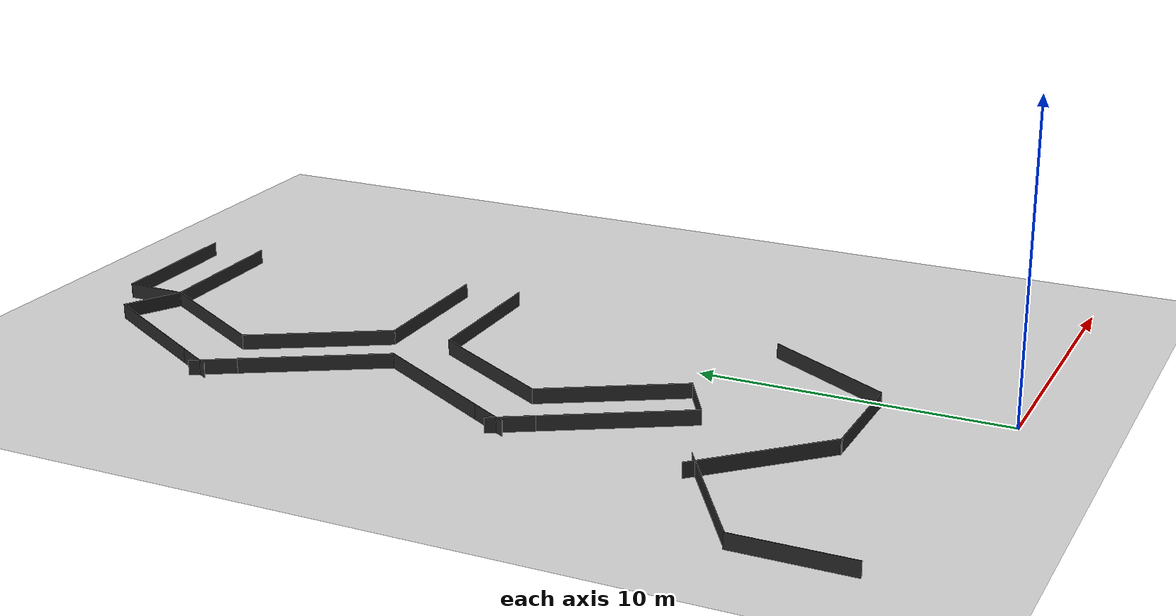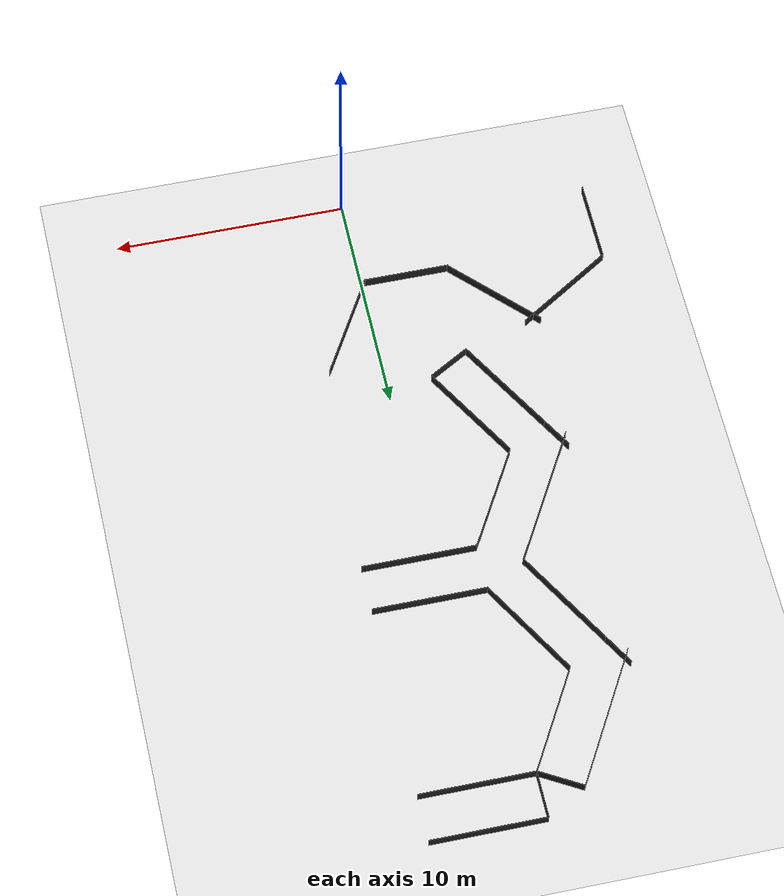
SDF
<sdf version="1.6">
 <world name="default">
  <model name="ground_plane">
   <static>1</static>
   <link name="link">
    <collision name="collision">
     <geometry><plane><normal>0 0 1</normal><size>100 100</size></plane></geometry>
     <surface><friction><ode><mu>100</mu><mu2>50</mu2></ode></friction></surface>
    </collision>
    <visual name="visual">
     <cast_shadows>0</cast_shadows>
     <geometry><plane><normal>0 0 1</normal><size>100 100</size></plane></geometry>
     <material>
      <script><uri>file://media/materials/scripts/gazebo.material</uri><name>Gazebo/White</name></script>
     </material>
    </visual>
   </link>
  </model>
  <model name="T_maze_0">
   <link name="link_clone_0_clone_clone">
    <inertial>
     <mass>1</mass>
     <inertia>
      <ixx>0.166667</ixx>
      <ixy>0</ixy>
      <ixz>0</ixz>
      <iyy>0.166667</iyy>
      <iyz>0</iyz>
      <izz>0.166667</izz>
     </inertia>
    </inertial>
    <pose>17.958 -12.4374 -0 5e-06 -0 -2.0944</pose>
    <visual name="visual">
     <geometry><box><size>0.015 4.8453 0.5</size></box></geometry>
     <material>
      <script><name>Gazebo/FlatBlack</name><uri>file://media/materials/scripts/gazebo.material</uri></script>
      <shader type="pixel"><normal_map>__default__</normal_map></shader>
      <ambient>0.1 0.1 0.1 1</ambient>
      <diffuse>0.1 0.1 0.1 1</diffuse>
      <specular>0.01 0.01 0.01 1</specular>
      <emissive>0 0 0 1</emissive>
     </material>
    </visual>
    <visual name="visual_2">
     <geometry><box><size>0.015 4.8453 0.5</size></box></geometry>
     <material>
      <script><name>Gazebo/FlatBlack</name><uri>file://media/materials/scripts/gazebo.material</uri></script>
      <shader type="pixel"><normal_map>__default__</normal_map></shader>
      <ambient>0.1 0.1 0.1 1</ambient>
      <diffuse>0.1 0.1 0.1 1</diffuse>
      <specular>0.01 0.01 0.01 1</specular>
      <emissive>0 0 0 1</emissive>
     </material>
     <pose>2 0 0 0 -0 0</pose>
    </visual>
    <collision name="collision_1">
     <pose>2 0 0 0 -0 0</pose>
     <geometry><box><size>0.015 4.8453 0.5</size></box></geometry>
     <surface>
      <friction>
       <ode><mu>1</mu><mu2>1</mu2><fdir1>0 0 0</fdir1><slip1>0</slip1><slip2>0</slip2></ode>
       <torsional>
        <coefficient>1</coefficient>
        <patch_radius>0</patch_radius>
        <surface_radius>0</surface_radius>
        <use_patch_radius>1</use_patch_radius>
        <ode><slip>0</slip></ode>
       </torsional>
      </friction>
      <bounce><restitution_coefficient>0</restitution_coefficient><threshold>1e+06</threshold></bounce>
      <contact>
       <collide_without_contact>0</collide_without_contact>
       <collide_without_contact_bitmask>1</collide_without_contact_bitmask>
       <collide_bitmask>1</collide_bitmask>
       <ode>
        <soft_cfm>0</soft_cfm>
        <soft_erp>0.2</soft_erp>
        <kp>1e+13</kp>
        <kd>1</kd>
        <max_vel>0.01</max_vel>
        <min_depth>0</min_depth>
       </ode>
       <bullet>
        <split_impulse>1</split_impulse>
        <split_impulse_penetration_threshold>-0.01</split_impulse_penetration_threshold>
        <soft_cfm>0</soft_cfm>
        <soft_erp>0.2</soft_erp>
        <kp>1e+13</kp>
        <kd>1</kd>
       </bullet>
      </contact>
     </surface>
    </collision>
    <collision name="collision">
     <geometry><box><size>0.015 4.8453 0.5</size></box></geometry>
     <surface>
      <friction>
       <ode><mu>1</mu><mu2>1</mu2><fdir1>0 0 0</fdir1><slip1>0</slip1><slip2>0</slip2></ode>
       <torsional>
        <coefficient>1</coefficient>
        <patch_radius>0</patch_radius>
        <surface_radius>0</surface_radius>
        <use_patch_radius>1</use_patch_radius>
        <ode><slip>0</slip></ode>
       </torsional>
      </friction>
      <bounce><restitution_coefficient>0</restitution_coefficient><threshold>1e+06</threshold></bounce>
      <contact>
       <collide_without_contact>0</collide_without_contact>
       <collide_without_contact_bitmask>1</collide_without_contact_bitmask>
       <collide_bitmask>1</collide_bitmask>
       <ode>
        <soft_cfm>0</soft_cfm>
        <soft_erp>0.2</soft_erp>
        <kp>1e+13</kp>
        <kd>1</kd>
        <max_vel>0.01</max_vel>
        <min_depth>0</min_depth>
       </ode>
       <bullet>
        <split_impulse>1</split_impulse>
        <split_impulse_penetration_threshold>-0.01</split_impulse_penetration_threshold>
        <soft_cfm>0</soft_cfm>
        <soft_erp>0.2</soft_erp>
        <kp>1e+13</kp>
        <kd>1</kd>
       </bullet>
      </contact>
     </surface>
    </collision>
   </link>
   <link name="link_clone_0_clone_clone_0">
    <inertial>
     <mass>1</mass>
     <inertia>
      <ixx>0.166667</ixx>
      <ixy>0</ixy>
      <ixz>0</ixz>
      <iyy>0.166667</iyy>
      <iyz>0</iyz>
      <izz>0.166667</izz>
     </inertia>
    </inertial>
    <pose>7.58617 -12.4482 -0 5e-06 -0 -2.0944</pose>
    <visual name="visual_2">
     <geometry><box><size>0.015 4.8453 0.5</size></box></geometry>
     <material>
      <script><name>Gazebo/FlatBlack</name><uri>file://media/materials/scripts/gazebo.material</uri></script>
      <shader type="pixel"><normal_map>__default__</normal_map></shader>
      <ambient>0.1 0.1 0.1 1</ambient>
      <diffuse>0.1 0.1 0.1 1</diffuse>
      <specular>0.01 0.01 0.01 1</specular>
      <emissive>0 0 0 1</emissive>
     </material>
     <pose>2 0 0 0 -0 0</pose>
    </visual>
    <visual name="visual">
     <geometry><box><size>0.015 4.8453 0.5</size></box></geometry>
     <material>
      <script><name>Gazebo/FlatBlack</name><uri>file://media/materials/scripts/gazebo.material</uri></script>
      <shader type="pixel"><normal_map>__default__</normal_map></shader>
      <ambient>0.1 0.1 0.1 1</ambient>
      <diffuse>0.1 0.1 0.1 1</diffuse>
      <specular>0.01 0.01 0.01 1</specular>
      <emissive>0 0 0 1</emissive>
     </material>
    </visual>
    <collision name="collision">
     <geometry><box><size>0.015 4.8453 0.5</size></box></geometry>
     <surface>
      <friction>
       <ode><mu>1</mu><mu2>1</mu2><fdir1>0 0 0</fdir1><slip1>0</slip1><slip2>0</slip2></ode>
       <torsional>
        <coefficient>1</coefficient>
        <patch_radius>0</patch_radius>
        <surface_radius>0</surface_radius>
        <use_patch_radius>1</use_patch_radius>
        <ode><slip>0</slip></ode>
       </torsional>
      </friction>
      <bounce><restitution_coefficient>0</restitution_coefficient><threshold>1e+06</threshold></bounce>
      <contact>
       <collide_without_contact>0</collide_without_contact>
       <collide_without_contact_bitmask>1</collide_without_contact_bitmask>
       <collide_bitmask>1</collide_bitmask>
       <ode>
        <soft_cfm>0</soft_cfm>
        <soft_erp>0.2</soft_erp>
        <kp>1e+13</kp>
        <kd>1</kd>
        <max_vel>0.01</max_vel>
        <min_depth>0</min_depth>
       </ode>
       <bullet>
        <split_impulse>1</split_impulse>
        <split_impulse_penetration_threshold>-0.01</split_impulse_penetration_threshold>
        <soft_cfm>0</soft_cfm>
        <soft_erp>0.2</soft_erp>
        <kp>1e+13</kp>
        <kd>1</kd>
       </bullet>
      </contact>
     </surface>
    </collision>
    <collision name="collision_1">
     <pose>2 0 0 0 -0 0</pose>
     <geometry><box><size>0.015 4.8453 0.5</size></box></geometry>
     <surface>
      <friction>
       <ode><mu>1</mu><mu2>1</mu2><fdir1>0 0 0</fdir1><slip1>0</slip1><slip2>0</slip2></ode>
       <torsional>
        <coefficient>1</coefficient>
        <patch_radius>0</patch_radius>
        <surface_radius>0</surface_radius>
        <use_patch_radius>1</use_patch_radius>
        <ode><slip>0</slip></ode>
       </torsional>
      </friction>
      <bounce><restitution_coefficient>0</restitution_coefficient><threshold>1e+06</threshold></bounce>
      <contact>
       <collide_without_contact>0</collide_without_contact>
       <collide_without_contact_bitmask>1</collide_without_contact_bitmask>
       <collide_bitmask>1</collide_bitmask>
       <ode>
        <soft_cfm>0</soft_cfm>
        <soft_erp>0.2</soft_erp>
        <kp>1e+13</kp>
        <kd>1</kd>
        <max_vel>0.01</max_vel>
        <min_depth>0</min_depth>
       </ode>
       <bullet>
        <split_impulse>1</split_impulse>
        <split_impulse_penetration_threshold>-0.01</split_impulse_penetration_threshold>
        <soft_cfm>0</soft_cfm>
        <soft_erp>0.2</soft_erp>
        <kp>1e+13</kp>
        <kd>1</kd>
       </bullet>
      </contact>
     </surface>
    </collision>
   </link>
   <link name="link_clone_2">
    <inertial>
     <mass>1</mass>
     <inertia>
      <ixx>0.166667</ixx>
      <ixy>0</ixy>
      <ixz>0</ixz>
      <iyy>0.166667</iyy>
      <iyz>0</iyz>
      <izz>0.166667</izz>
     </inertia>
    </inertial>
    <pose>13.8692 -8.82128 0 0 -0 0</pose>
    <visual name="visual">
     <geometry><box><size>0.015 4.8453 0.5</size></box></geometry>
     <material>
      <script><name>Gazebo/FlatBlack</name><uri>file://media/materials/scripts/gazebo.material</uri></script>
      <shader type="pixel"><normal_map>__default__</normal_map></shader>
      <ambient>0.1 0.1 0.1 1</ambient>
      <diffuse>0.1 0.1 0.1 1</diffuse>
      <specular>0.01 0.01 0.01 1</specular>
      <emissive>0 0 0 1</emissive>
     </material>
    </visual>
    <visual name="visual_2">
     <geometry><box><size>0.015 4.8453 0.5</size></box></geometry>
     <material>
      <script><name>Gazebo/FlatBlack</name><uri>file://media/materials/scripts/gazebo.material</uri></script>
      <shader type="pixel"><normal_map>__default__</normal_map></shader>
      <ambient>0.1 0.1 0.1 1</ambient>
      <diffuse>0.1 0.1 0.1 1</diffuse>
      <specular>0.01 0.01 0.01 1</specular>
      <emissive>0 0 0 1</emissive>
     </material>
     <pose>2 0 0 0 -0 0</pose>
    </visual>
    <collision name="collision">
     <geometry><box><size>0.015 4.8453 0.5</size></box></geometry>
     <surface>
      <friction>
       <ode><mu>1</mu><mu2>1</mu2><fdir1>0 0 0</fdir1><slip1>0</slip1><slip2>0</slip2></ode>
       <torsional>
        <coefficient>1</coefficient>
        <patch_radius>0</patch_radius>
        <surface_radius>0</surface_radius>
        <use_patch_radius>1</use_patch_radius>
        <ode><slip>0</slip></ode>
       </torsional>
      </friction>
      <bounce><restitution_coefficient>0</restitution_coefficient><threshold>1e+06</threshold></bounce>
      <contact>
       <collide_without_contact>0</collide_without_contact>
       <collide_without_contact_bitmask>1</collide_without_contact_bitmask>
       <collide_bitmask>1</collide_bitmask>
       <ode>
        <soft_cfm>0</soft_cfm>
        <soft_erp>0.2</soft_erp>
        <kp>1e+13</kp>
        <kd>1</kd>
        <max_vel>0.01</max_vel>
        <min_depth>0</min_depth>
       </ode>
       <bullet>
        <split_impulse>1</split_impulse>
        <split_impulse_penetration_threshold>-0.01</split_impulse_penetration_threshold>
        <soft_cfm>0</soft_cfm>
        <soft_erp>0.2</soft_erp>
        <kp>1e+13</kp>
        <kd>1</kd>
       </bullet>
      </contact>
     </surface>
    </collision>
    <collision name="collision_1">
     <pose>2 0 0 0 -0 0</pose>
     <geometry><box><size>0.015 4.8453 0.5</size></box></geometry>
     <surface>
      <friction>
       <ode><mu>1</mu><mu2>1</mu2><fdir1>0 0 0</fdir1><slip1>0</slip1><slip2>0</slip2></ode>
       <torsional>
        <coefficient>1</coefficient>
        <patch_radius>0</patch_radius>
        <surface_radius>0</surface_radius>
        <use_patch_radius>1</use_patch_radius>
        <ode><slip>0</slip></ode>
       </torsional>
      </friction>
      <bounce><restitution_coefficient>0</restitution_coefficient><threshold>1e+06</threshold></bounce>
      <contact>
       <collide_without_contact>0</collide_without_contact>
       <collide_without_contact_bitmask>1</collide_without_contact_bitmask>
       <collide_bitmask>1</collide_bitmask>
       <ode>
        <soft_cfm>0</soft_cfm>
        <soft_erp>0.2</soft_erp>
        <kp>1e+13</kp>
        <kd>1</kd>
        <max_vel>0.01</max_vel>
        <min_depth>0</min_depth>
       </ode>
       <bullet>
        <split_impulse>1</split_impulse>
        <split_impulse_penetration_threshold>-0.01</split_impulse_penetration_threshold>
        <soft_cfm>0</soft_cfm>
        <soft_erp>0.2</soft_erp>
        <kp>1e+13</kp>
        <kd>1</kd>
       </bullet>
      </contact>
     </surface>
    </collision>
   </link>
   <link name="link_clone_2_clone">
    <inertial>
     <mass>1</mass>
     <inertia>
      <ixx>0.166667</ixx>
      <ixy>0</ixy>
      <ixz>0</ixz>
      <iyy>0.166667</iyy>
      <iyz>0</iyz>
      <izz>0.166667</izz>
     </inertia>
    </inertial>
    <pose>24.2456 -8.82145 -0 0 -0 0</pose>
    <visual name="visual_2">
     <geometry><box><size>0.015 4.8453 0.5</size></box></geometry>
     <material>
      <script><name>Gazebo/FlatBlack</name><uri>file://media/materials/scripts/gazebo.material</uri></script>
      <shader type="pixel"><normal_map>__default__</normal_map></shader>
      <ambient>0.1 0.1 0.1 1</ambient>
      <diffuse>0.1 0.1 0.1 1</diffuse>
      <specular>0.01 0.01 0.01 1</specular>
      <emissive>0 0 0 1</emissive>
     </material>
     <pose>2 0 0 0 -0 0</pose>
    </visual>
    <visual name="visual">
     <geometry><box><size>0.015 4.8453 0.5</size></box></geometry>
     <material>
      <script><name>Gazebo/FlatBlack</name><uri>file://media/materials/scripts/gazebo.material</uri></script>
      <shader type="pixel"><normal_map>__default__</normal_map></shader>
      <ambient>0.1 0.1 0.1 1</ambient>
      <diffuse>0.1 0.1 0.1 1</diffuse>
      <specular>0.01 0.01 0.01 1</specular>
      <emissive>0 0 0 1</emissive>
     </material>
    </visual>
    <collision name="collision">
     <geometry><box><size>0.015 4.8453 0.5</size></box></geometry>
     <surface>
      <friction>
       <ode><mu>1</mu><mu2>1</mu2><fdir1>0 0 0</fdir1><slip1>0</slip1><slip2>0</slip2></ode>
       <torsional>
        <coefficient>1</coefficient>
        <patch_radius>0</patch_radius>
        <surface_radius>0</surface_radius>
        <use_patch_radius>1</use_patch_radius>
        <ode><slip>0</slip></ode>
       </torsional>
      </friction>
      <bounce><restitution_coefficient>0</restitution_coefficient><threshold>1e+06</threshold></bounce>
      <contact>
       <collide_without_contact>0</collide_without_contact>
       <collide_without_contact_bitmask>1</collide_without_contact_bitmask>
       <collide_bitmask>1</collide_bitmask>
       <ode>
        <soft_cfm>0</soft_cfm>
        <soft_erp>0.2</soft_erp>
        <kp>1e+13</kp>
        <kd>1</kd>
        <max_vel>0.01</max_vel>
        <min_depth>0</min_depth>
       </ode>
       <bullet>
        <split_impulse>1</split_impulse>
        <split_impulse_penetration_threshold>-0.01</split_impulse_penetration_threshold>
        <soft_cfm>0</soft_cfm>
        <soft_erp>0.2</soft_erp>
        <kp>1e+13</kp>
        <kd>1</kd>
       </bullet>
      </contact>
     </surface>
    </collision>
    <collision name="collision_1">
     <pose>2 0 0 0 -0 0</pose>
     <geometry><box><size>0.015 4.8453 0.5</size></box></geometry>
     <surface>
      <friction>
       <ode><mu>1</mu><mu2>1</mu2><fdir1>0 0 0</fdir1><slip1>0</slip1><slip2>0</slip2></ode>
       <torsional>
        <coefficient>1</coefficient>
        <patch_radius>0</patch_radius>
        <surface_radius>0</surface_radius>
        <use_patch_radius>1</use_patch_radius>
        <ode><slip>0</slip></ode>
       </torsional>
      </friction>
      <bounce><restitution_coefficient>0</restitution_coefficient><threshold>1e+06</threshold></bounce>
      <contact>
       <collide_without_contact>0</collide_without_contact>
       <collide_without_contact_bitmask>1</collide_without_contact_bitmask>
       <collide_bitmask>1</collide_bitmask>
       <ode>
        <soft_cfm>0</soft_cfm>
        <soft_erp>0.2</soft_erp>
        <kp>1e+13</kp>
        <kd>1</kd>
        <max_vel>0.01</max_vel>
        <min_depth>0</min_depth>
       </ode>
       <bullet>
        <split_impulse>1</split_impulse>
        <split_impulse_penetration_threshold>-0.01</split_impulse_penetration_threshold>
        <soft_cfm>0</soft_cfm>
        <soft_erp>0.2</soft_erp>
        <kp>1e+13</kp>
        <kd>1</kd>
       </bullet>
      </contact>
     </surface>
    </collision>
   </link>
   <link name="link_clone_clone_clone">
    <inertial>
     <mass>1</mass>
     <inertia>
      <ixx>0.166667</ixx>
      <ixy>0</ixy>
      <ixz>0</ixz>
      <iyy>0.166667</iyy>
      <iyz>0</iyz>
      <izz>0.166667</izz>
     </inertia>
    </inertial>
    <pose>12.7749 -14.1805 0 5e-06 -0 2.0944</pose>
    <visual name="visual_2">
     <geometry><box><size>0.015 4.8453 0.5</size></box></geometry>
     <material>
      <script><name>Gazebo/FlatBlack</name><uri>file://media/materials/scripts/gazebo.material</uri></script>
      <shader type="pixel"><normal_map>__default__</normal_map></shader>
      <ambient>0.1 0.1 0.1 1</ambient>
      <diffuse>0.1 0.1 0.1 1</diffuse>
      <specular>0.01 0.01 0.01 1</specular>
      <emissive>0 0 0 1</emissive>
     </material>
     <pose>2 0 0 0 -0 0</pose>
    </visual>
    <visual name="visual">
     <geometry><box><size>0.015 4.8453 0.5</size></box></geometry>
     <material>
      <script><name>Gazebo/FlatBlack</name><uri>file://media/materials/scripts/gazebo.material</uri></script>
      <shader type="pixel"><normal_map>__default__</normal_map></shader>
      <ambient>0.1 0.1 0.1 1</ambient>
      <diffuse>0.1 0.1 0.1 1</diffuse>
      <specular>0.01 0.01 0.01 1</specular>
      <emissive>0 0 0 1</emissive>
     </material>
    </visual>
    <collision name="collision_1">
     <pose>2 0 0 0 -0 0</pose>
     <geometry><box><size>0.015 4.8453 0.5</size></box></geometry>
     <surface>
      <friction>
       <ode><mu>1</mu><mu2>1</mu2><fdir1>0 0 0</fdir1><slip1>0</slip1><slip2>0</slip2></ode>
       <torsional>
        <coefficient>1</coefficient>
        <patch_radius>0</patch_radius>
        <surface_radius>0</surface_radius>
        <use_patch_radius>1</use_patch_radius>
        <ode><slip>0</slip></ode>
       </torsional>
      </friction>
      <bounce><restitution_coefficient>0</restitution_coefficient><threshold>1e+06</threshold></bounce>
      <contact>
       <collide_without_contact>0</collide_without_contact>
       <collide_without_contact_bitmask>1</collide_without_contact_bitmask>
       <collide_bitmask>1</collide_bitmask>
       <ode>
        <soft_cfm>0</soft_cfm>
        <soft_erp>0.2</soft_erp>
        <kp>1e+13</kp>
        <kd>1</kd>
        <max_vel>0.01</max_vel>
        <min_depth>0</min_depth>
       </ode>
       <bullet>
        <split_impulse>1</split_impulse>
        <split_impulse_penetration_threshold>-0.01</split_impulse_penetration_threshold>
        <soft_cfm>0</soft_cfm>
        <soft_erp>0.2</soft_erp>
        <kp>1e+13</kp>
        <kd>1</kd>
       </bullet>
      </contact>
     </surface>
    </collision>
    <collision name="collision">
     <geometry><box><size>0.015 4.8453 0.5</size></box></geometry>
     <surface>
      <friction>
       <ode><mu>1</mu><mu2>1</mu2><fdir1>0 0 0</fdir1><slip1>0</slip1><slip2>0</slip2></ode>
       <torsional>
        <coefficient>1</coefficient>
        <patch_radius>0</patch_radius>
        <surface_radius>0</surface_radius>
        <use_patch_radius>1</use_patch_radius>
        <ode><slip>0</slip></ode>
       </torsional>
      </friction>
      <bounce><restitution_coefficient>0</restitution_coefficient><threshold>1e+06</threshold></bounce>
      <contact>
       <collide_without_contact>0</collide_without_contact>
       <collide_without_contact_bitmask>1</collide_without_contact_bitmask>
       <collide_bitmask>1</collide_bitmask>
       <ode>
        <soft_cfm>0</soft_cfm>
        <soft_erp>0.2</soft_erp>
        <kp>1e+13</kp>
        <kd>1</kd>
        <max_vel>0.01</max_vel>
        <min_depth>0</min_depth>
       </ode>
       <bullet>
        <split_impulse>1</split_impulse>
        <split_impulse_penetration_threshold>-0.01</split_impulse_penetration_threshold>
        <soft_cfm>0</soft_cfm>
        <soft_erp>0.2</soft_erp>
        <kp>1e+13</kp>
        <kd>1</kd>
       </bullet>
      </contact>
     </surface>
    </collision>
   </link>
   <link name="link_clone_clone_clone_clone">
    <inertial>
     <mass>1</mass>
     <inertia>
      <ixx>0.166667</ixx>
      <ixy>0</ixy>
      <ixz>0</ixz>
      <iyy>0.166667</iyy>
      <iyz>0</iyz>
      <izz>0.166667</izz>
     </inertia>
    </inertial>
    <pose>4.99102 -12.1127 -1e-06 4e-06 -2e-06 -0.5236</pose>
    <visual name="visual">
     <geometry><box><size>0.015 2 0.5</size></box></geometry>
     <material>
      <script><name>Gazebo/FlatBlack</name><uri>file://media/materials/scripts/gazebo.material</uri></script>
      <shader type="pixel"><normal_map>__default__</normal_map></shader>
      <ambient>0.1 0.1 0.1 1</ambient>
      <diffuse>0.1 0.1 0.1 1</diffuse>
      <specular>0.01 0.01 0.01 1</specular>
      <emissive>0 0 0 1</emissive>
     </material>
    </visual>
    <collision name="collision">
     <geometry><box><size>0.015 2 0.5</size></box></geometry>
     <surface>
      <friction>
       <ode><mu>1</mu><mu2>1</mu2><fdir1>0 0 0</fdir1><slip1>0</slip1><slip2>0</slip2></ode>
       <torsional>
        <coefficient>1</coefficient>
        <patch_radius>0</patch_radius>
        <surface_radius>0</surface_radius>
        <use_patch_radius>1</use_patch_radius>
        <ode><slip>0</slip></ode>
       </torsional>
      </friction>
      <bounce><restitution_coefficient>0</restitution_coefficient><threshold>1e+06</threshold></bounce>
      <contact>
       <collide_without_contact>0</collide_without_contact>
       <collide_without_contact_bitmask>1</collide_without_contact_bitmask>
       <collide_bitmask>1</collide_bitmask>
       <ode>
        <soft_cfm>0</soft_cfm>
        <soft_erp>0.2</soft_erp>
        <kp>1e+13</kp>
        <kd>1</kd>
        <max_vel>0.01</max_vel>
        <min_depth>0</min_depth>
       </ode>
       <bullet>
        <split_impulse>1</split_impulse>
        <split_impulse_penetration_threshold>-0.01</split_impulse_penetration_threshold>
        <soft_cfm>0</soft_cfm>
        <soft_erp>0.2</soft_erp>
        <kp>1e+13</kp>
        <kd>1</kd>
       </bullet>
      </contact>
     </surface>
    </collision>
   </link>
   <link name="link_clone_clone_clone_clone_0">
    <inertial>
     <mass>1</mass>
     <inertia>
      <ixx>0.166667</ixx>
      <ixy>0</ixy>
      <ixz>0</ixz>
      <iyy>0.166667</iyy>
      <iyz>0</iyz>
      <izz>0.166667</izz>
     </inertia>
    </inertial>
    <pose>10.0368 -15.7612 -9e-06 5e-06 -0 2.0944</pose>
    <visual name="ModelPreview_9::link_clone_clone_clone_clone_0::visual_2">
     <geometry><box><size>0.015 1.5 0.5</size></box></geometry>
     <material>
      <script><name>Gazebo/FlatBlack</name><uri>file://media/materials/scripts/gazebo.material</uri></script>
      <shader type="pixel"><normal_map>__default__</normal_map></shader>
      <ambient>0.1 0.1 0.1 1</ambient>
      <diffuse>0.1 0.1 0.1 1</diffuse>
      <specular>0.01 0.01 0.01 1</specular>
      <emissive>0 0 0 1</emissive>
     </material>
     <pose>0.3525 0.615 0 0 -0 2.0944</pose>
    </visual>
    <visual name="visual">
     <geometry><box><size>0.015 1.5 0.5</size></box></geometry>
     <material>
      <script><name>Gazebo/FlatBlack</name><uri>file://media/materials/scripts/gazebo.material</uri></script>
      <shader type="pixel"><normal_map>__default__</normal_map></shader>
      <ambient>0.1 0.1 0.1 1</ambient>
      <diffuse>0.1 0.1 0.1 1</diffuse>
      <specular>0.01 0.01 0.01 1</specular>
      <emissive>0 0 0 1</emissive>
     </material>
    </visual>
    <collision name="collision">
     <geometry><box><size>0.015 1.5 0.5</size></box></geometry>
     <surface>
      <friction>
       <ode><mu>1</mu><mu2>1</mu2><fdir1>0 0 0</fdir1><slip1>0</slip1><slip2>0</slip2></ode>
       <torsional>
        <coefficient>1</coefficient>
        <patch_radius>0</patch_radius>
        <surface_radius>0</surface_radius>
        <use_patch_radius>1</use_patch_radius>
        <ode><slip>0</slip></ode>
       </torsional>
      </friction>
      <bounce><restitution_coefficient>0</restitution_coefficient><threshold>1e+06</threshold></bounce>
      <contact>
       <collide_without_contact>0</collide_without_contact>
       <collide_without_contact_bitmask>1</collide_without_contact_bitmask>
       <collide_bitmask>1</collide_bitmask>
       <ode>
        <soft_cfm>0</soft_cfm>
        <soft_erp>0.2</soft_erp>
        <kp>1e+13</kp>
        <kd>1</kd>
        <max_vel>0.01</max_vel>
        <min_depth>0</min_depth>
       </ode>
       <bullet>
        <split_impulse>1</split_impulse>
        <split_impulse_penetration_threshold>-0.01</split_impulse_penetration_threshold>
        <soft_cfm>0</soft_cfm>
        <soft_erp>0.2</soft_erp>
        <kp>1e+13</kp>
        <kd>1</kd>
       </bullet>
      </contact>
     </surface>
    </collision>
    <collision name="collision_2">
     <pose>0.3525 0.615 0 0 -0 2.0944</pose>
     <geometry><box><size>0.015 1.5 0.5</size></box></geometry>
     <surface>
      <friction>
       <ode><mu>1</mu><mu2>1</mu2><fdir1>0 0 0</fdir1><slip1>0</slip1><slip2>0</slip2></ode>
       <torsional>
        <coefficient>1</coefficient>
        <patch_radius>0</patch_radius>
        <surface_radius>0</surface_radius>
        <use_patch_radius>1</use_patch_radius>
        <ode><slip>0</slip></ode>
       </torsional>
      </friction>
      <bounce><restitution_coefficient>0</restitution_coefficient><threshold>1e+06</threshold></bounce>
      <contact>
       <collide_without_contact>0</collide_without_contact>
       <collide_without_contact_bitmask>1</collide_without_contact_bitmask>
       <collide_bitmask>1</collide_bitmask>
       <ode>
        <soft_cfm>0</soft_cfm>
        <soft_erp>0.2</soft_erp>
        <kp>1e+13</kp>
        <kd>1</kd>
        <max_vel>0.01</max_vel>
        <min_depth>0</min_depth>
       </ode>
       <bullet>
        <split_impulse>1</split_impulse>
        <split_impulse_penetration_threshold>-0.01</split_impulse_penetration_threshold>
        <soft_cfm>0</soft_cfm>
        <soft_erp>0.2</soft_erp>
        <kp>1e+13</kp>
        <kd>1</kd>
       </bullet>
      </contact>
     </surface>
    </collision>
   </link>
   <link name="link_clone_clone_clone_clone_0_clone">
    <inertial>
     <mass>1</mass>
     <inertia>
      <ixx>0.166667</ixx>
      <ixy>0</ixy>
      <ixz>0</ixz>
      <iyy>0.166667</iyy>
      <iyz>0</iyz>
      <izz>0.166667</izz>
     </inertia>
    </inertial>
    <pose>20.4096 -15.7503 -9e-06 5e-06 -0 2.0944</pose>
    <visual name="visual_2">
     <geometry><box><size>0.015 1.5 0.5</size></box></geometry>
     <material>
      <script><name>Gazebo/FlatBlack</name><uri>file://media/materials/scripts/gazebo.material</uri></script>
      <shader type="pixel"><normal_map>__default__</normal_map></shader>
      <ambient>0.1 0.1 0.1 1</ambient>
      <diffuse>0.1 0.1 0.1 1</diffuse>
      <specular>0.01 0.01 0.01 1</specular>
      <emissive>0 0 0 1</emissive>
     </material>
     <pose>0.3525 0.615 0 0 -0 2.0944</pose>
    </visual>
    <visual name="visual">
     <geometry><box><size>0.015 1.5 0.5</size></box></geometry>
     <material>
      <script><name>Gazebo/FlatBlack</name><uri>file://media/materials/scripts/gazebo.material</uri></script>
      <shader type="pixel"><normal_map>__default__</normal_map></shader>
      <ambient>0.1 0.1 0.1 1</ambient>
      <diffuse>0.1 0.1 0.1 1</diffuse>
      <specular>0.01 0.01 0.01 1</specular>
      <emissive>0 0 0 1</emissive>
     </material>
    </visual>
    <collision name="collision_2">
     <pose>0.3525 0.615 0 0 -0 2.0944</pose>
     <geometry><box><size>0.015 1.5 0.5</size></box></geometry>
     <surface>
      <friction>
       <ode><mu>1</mu><mu2>1</mu2><fdir1>0 0 0</fdir1><slip1>0</slip1><slip2>0</slip2></ode>
       <torsional>
        <coefficient>1</coefficient>
        <patch_radius>0</patch_radius>
        <surface_radius>0</surface_radius>
        <use_patch_radius>1</use_patch_radius>
        <ode><slip>0</slip></ode>
       </torsional>
      </friction>
      <bounce><restitution_coefficient>0</restitution_coefficient><threshold>1e+06</threshold></bounce>
      <contact>
       <collide_without_contact>0</collide_without_contact>
       <collide_without_contact_bitmask>1</collide_without_contact_bitmask>
       <collide_bitmask>1</collide_bitmask>
       <ode>
        <soft_cfm>0</soft_cfm>
        <soft_erp>0.2</soft_erp>
        <kp>1e+13</kp>
        <kd>1</kd>
        <max_vel>0.01</max_vel>
        <min_depth>0</min_depth>
       </ode>
       <bullet>
        <split_impulse>1</split_impulse>
        <split_impulse_penetration_threshold>-0.01</split_impulse_penetration_threshold>
        <soft_cfm>0</soft_cfm>
        <soft_erp>0.2</soft_erp>
        <kp>1e+13</kp>
        <kd>1</kd>
       </bullet>
      </contact>
     </surface>
    </collision>
    <collision name="collision">
     <geometry><box><size>0.015 1.5 0.5</size></box></geometry>
     <surface>
      <friction>
       <ode><mu>1</mu><mu2>1</mu2><fdir1>0 0 0</fdir1><slip1>0</slip1><slip2>0</slip2></ode>
       <torsional>
        <coefficient>1</coefficient>
        <patch_radius>0</patch_radius>
        <surface_radius>0</surface_radius>
        <use_patch_radius>1</use_patch_radius>
        <ode><slip>0</slip></ode>
       </torsional>
      </friction>
      <bounce><restitution_coefficient>0</restitution_coefficient><threshold>1e+06</threshold></bounce>
      <contact>
       <collide_without_contact>0</collide_without_contact>
       <collide_without_contact_bitmask>1</collide_without_contact_bitmask>
       <collide_bitmask>1</collide_bitmask>
       <ode>
        <soft_cfm>0</soft_cfm>
        <soft_erp>0.2</soft_erp>
        <kp>1e+13</kp>
        <kd>1</kd>
        <max_vel>0.01</max_vel>
        <min_depth>0</min_depth>
       </ode>
       <bullet>
        <split_impulse>1</split_impulse>
        <split_impulse_penetration_threshold>-0.01</split_impulse_penetration_threshold>
        <soft_cfm>0</soft_cfm>
        <soft_erp>0.2</soft_erp>
        <kp>1e+13</kp>
        <kd>1</kd>
       </bullet>
      </contact>
     </surface>
    </collision>
   </link>
   <link name="link_clone_clone_clone_clone_1">
    <inertial>
     <mass>1</mass>
     <inertia>
      <ixx>0.166667</ixx>
      <ixy>0</ixy>
      <ixz>0</ixz>
      <iyy>0.166667</iyy>
      <iyz>0</iyz>
      <izz>0.166667</izz>
     </inertia>
    </inertial>
    <pose>23.1465 -14.1698 -0 5e-06 -0 2.0944</pose>
    <visual name="visual_2">
     <geometry><box><size>0.015 4.8453 0.5</size></box></geometry>
     <material>
      <script><name>Gazebo/FlatBlack</name><uri>file://media/materials/scripts/gazebo.material</uri></script>
      <shader type="pixel"><normal_map>__default__</normal_map></shader>
      <ambient>0.1 0.1 0.1 1</ambient>
      <diffuse>0.1 0.1 0.1 1</diffuse>
      <specular>0.01 0.01 0.01 1</specular>
      <emissive>0 0 0 1</emissive>
     </material>
     <pose>2 0 0 0 -0 0</pose>
    </visual>
    <visual name="visual">
     <geometry><box><size>0.015 4.8453 0.5</size></box></geometry>
     <material>
      <script><name>Gazebo/FlatBlack</name><uri>file://media/materials/scripts/gazebo.material</uri></script>
      <shader type="pixel"><normal_map>__default__</normal_map></shader>
      <ambient>0.1 0.1 0.1 1</ambient>
      <diffuse>0.1 0.1 0.1 1</diffuse>
      <specular>0.01 0.01 0.01 1</specular>
      <emissive>0 0 0 1</emissive>
     </material>
    </visual>
    <collision name="collision_1">
     <pose>2 0 0 0 -0 0</pose>
     <geometry><box><size>0.015 4.8453 0.5</size></box></geometry>
     <surface>
      <friction>
       <ode><mu>1</mu><mu2>1</mu2><fdir1>0 0 0</fdir1><slip1>0</slip1><slip2>0</slip2></ode>
       <torsional>
        <coefficient>1</coefficient>
        <patch_radius>0</patch_radius>
        <surface_radius>0</surface_radius>
        <use_patch_radius>1</use_patch_radius>
        <ode><slip>0</slip></ode>
       </torsional>
      </friction>
      <bounce><restitution_coefficient>0</restitution_coefficient><threshold>1e+06</threshold></bounce>
      <contact>
       <collide_without_contact>0</collide_without_contact>
       <collide_without_contact_bitmask>1</collide_without_contact_bitmask>
       <collide_bitmask>1</collide_bitmask>
       <ode>
        <soft_cfm>0</soft_cfm>
        <soft_erp>0.2</soft_erp>
        <kp>1e+13</kp>
        <kd>1</kd>
        <max_vel>0.01</max_vel>
        <min_depth>0</min_depth>
       </ode>
       <bullet>
        <split_impulse>1</split_impulse>
        <split_impulse_penetration_threshold>-0.01</split_impulse_penetration_threshold>
        <soft_cfm>0</soft_cfm>
        <soft_erp>0.2</soft_erp>
        <kp>1e+13</kp>
        <kd>1</kd>
       </bullet>
      </contact>
     </surface>
    </collision>
    <collision name="collision">
     <geometry><box><size>0.015 4.8453 0.5</size></box></geometry>
     <surface>
      <friction>
       <ode><mu>1</mu><mu2>1</mu2><fdir1>0 0 0</fdir1><slip1>0</slip1><slip2>0</slip2></ode>
       <torsional>
        <coefficient>1</coefficient>
        <patch_radius>0</patch_radius>
        <surface_radius>0</surface_radius>
        <use_patch_radius>1</use_patch_radius>
        <ode><slip>0</slip></ode>
       </torsional>
      </friction>
      <bounce><restitution_coefficient>0</restitution_coefficient><threshold>1e+06</threshold></bounce>
      <contact>
       <collide_without_contact>0</collide_without_contact>
       <collide_without_contact_bitmask>1</collide_without_contact_bitmask>
       <collide_bitmask>1</collide_bitmask>
       <ode>
        <soft_cfm>0</soft_cfm>
        <soft_erp>0.2</soft_erp>
        <kp>1e+13</kp>
        <kd>1</kd>
        <max_vel>0.01</max_vel>
        <min_depth>0</min_depth>
       </ode>
       <bullet>
        <split_impulse>1</split_impulse>
        <split_impulse_penetration_threshold>-0.01</split_impulse_penetration_threshold>
        <soft_cfm>0</soft_cfm>
        <soft_erp>0.2</soft_erp>
        <kp>1e+13</kp>
        <kd>1</kd>
       </bullet>
      </contact>
     </surface>
    </collision>
   </link>
   <link name="link_clone_clone_clone_clone_clone">
    <inertial>
     <mass>1</mass>
     <inertia>
      <ixx>0.166667</ixx>
      <ixy>0</ixy>
      <ixz>0</ixz>
      <iyy>0.166667</iyy>
      <iyz>0</iyz>
      <izz>0.166667</izz>
     </inertia>
    </inertial>
    <pose>24.7374 -12.098 -1e-06 0 -4e-06 0.5236</pose>
    <visual name="visual">
     <geometry><box><size>0.015 2 0.5</size></box></geometry>
     <material>
      <script><name>Gazebo/FlatBlack</name><uri>file://media/materials/scripts/gazebo.material</uri></script>
      <shader type="pixel"><normal_map>__default__</normal_map></shader>
      <ambient>0.1 0.1 0.1 1</ambient>
      <diffuse>0.1 0.1 0.1 1</diffuse>
      <specular>0.01 0.01 0.01 1</specular>
      <emissive>0 0 0 1</emissive>
     </material>
    </visual>
    <collision name="collision">
     <geometry><box><size>0.015 2 0.5</size></box></geometry>
     <surface>
      <friction>
       <ode><mu>1</mu><mu2>1</mu2><fdir1>0 0 0</fdir1><slip1>0</slip1><slip2>0</slip2></ode>
       <torsional>
        <coefficient>1</coefficient>
        <patch_radius>0</patch_radius>
        <surface_radius>0</surface_radius>
        <use_patch_radius>1</use_patch_radius>
        <ode><slip>0</slip></ode>
       </torsional>
      </friction>
      <bounce><restitution_coefficient>0</restitution_coefficient><threshold>1e+06</threshold></bounce>
      <contact>
       <collide_without_contact>0</collide_without_contact>
       <collide_without_contact_bitmask>1</collide_without_contact_bitmask>
       <collide_bitmask>1</collide_bitmask>
       <ode>
        <soft_cfm>0</soft_cfm>
        <soft_erp>0.2</soft_erp>
        <kp>1e+13</kp>
        <kd>1</kd>
        <max_vel>0.01</max_vel>
        <min_depth>0</min_depth>
       </ode>
       <bullet>
        <split_impulse>1</split_impulse>
        <split_impulse_penetration_threshold>-0.01</split_impulse_penetration_threshold>
        <soft_cfm>0</soft_cfm>
        <soft_erp>0.2</soft_erp>
        <kp>1e+13</kp>
        <kd>1</kd>
       </bullet>
      </contact>
     </surface>
    </collision>
   </link>
   <link name="link_clone_clone_clone_clone_clone_clone">
    <inertial>
     <mass>1</mass>
     <inertia>
      <ixx>0.166667</ixx>
      <ixy>0</ixy>
      <ixz>0</ixz>
      <iyy>0.166667</iyy>
      <iyz>0</iyz>
      <izz>0.166667</izz>
     </inertia>
    </inertial>
    <pose>25.2493 -11.2357 -1e-06 -0 -4e-06 1.5708</pose>
    <visual name="visual">
     <geometry><box><size>0.015 2 0.5</size></box></geometry>
     <material>
      <script><name>Gazebo/FlatBlack</name><uri>file://media/materials/scripts/gazebo.material</uri></script>
      <shader type="pixel"><normal_map>__default__</normal_map></shader>
      <ambient>0.1 0.1 0.1 1</ambient>
      <diffuse>0.1 0.1 0.1 1</diffuse>
      <specular>0.01 0.01 0.01 1</specular>
      <emissive>0 0 0 1</emissive>
     </material>
    </visual>
    <collision name="collision">
     <geometry><box><size>0.015 2 0.5</size></box></geometry>
     <surface>
      <friction>
       <ode><mu>1</mu><mu2>1</mu2><fdir1>0 0 0</fdir1><slip1>0</slip1><slip2>0</slip2></ode>
       <torsional>
        <coefficient>1</coefficient>
        <patch_radius>0</patch_radius>
        <surface_radius>0</surface_radius>
        <use_patch_radius>1</use_patch_radius>
        <ode><slip>0</slip></ode>
       </torsional>
      </friction>
      <bounce><restitution_coefficient>0</restitution_coefficient><threshold>1e+06</threshold></bounce>
      <contact>
       <collide_without_contact>0</collide_without_contact>
       <collide_without_contact_bitmask>1</collide_without_contact_bitmask>
       <collide_bitmask>1</collide_bitmask>
       <ode>
        <soft_cfm>0</soft_cfm>
        <soft_erp>0.2</soft_erp>
        <kp>1e+13</kp>
        <kd>1</kd>
        <max_vel>0.01</max_vel>
        <min_depth>0</min_depth>
       </ode>
       <bullet>
        <split_impulse>1</split_impulse>
        <split_impulse_penetration_threshold>-0.01</split_impulse_penetration_threshold>
        <soft_cfm>0</soft_cfm>
        <soft_erp>0.2</soft_erp>
        <kp>1e+13</kp>
        <kd>1</kd>
       </bullet>
      </contact>
     </surface>
    </collision>
   </link>
   <static>1</static>
   <pose>9.33217 3.95788 0.249997 -3.14159 -3e-06 1.57079</pose>
  </model>
  <model name="T_camber_2_2">
   <link name="link_clone_0_clone_clone_1_clone_0_clone_clone_0_clone_1_clone">
    <inertial>
     <mass>1</mass>
     <inertia>
      <ixx>0.166667</ixx>
      <ixy>0</ixy>
      <ixz>0</ixz>
      <iyy>0.166667</iyy>
      <iyz>0</iyz>
      <izz>0.166667</izz>
     </inertia>
    </inertial>
    <pose>-4.12999 -7.96628 4e-06 5e-06 0 1.04719</pose>
    <visual name="visual">
     <geometry><box><size>0.015 4.8453 0.5</size></box></geometry>
     <material>
      <script><name>Gazebo/FlatBlack</name><uri>file://media/materials/scripts/gazebo.material</uri></script>
      <shader type="pixel"><normal_map>__default__</normal_map></shader>
      <ambient>0.1 0.1 0.1 1</ambient>
      <diffuse>0.1 0.1 0.1 1</diffuse>
      <specular>0.01 0.01 0.01 1</specular>
      <emissive>0 0 0 1</emissive>
     </material>
     <pose>0 -0.57 0 0 -0 0</pose>
    </visual>
    <collision name="collision">
     <pose>0 -0.57 0 0 -0 0</pose>
     <geometry><box><size>0.015 4.8453 0.5</size></box></geometry>
     <surface>
      <friction>
       <ode><mu>1</mu><mu2>1</mu2><fdir1>0 0 0</fdir1><slip1>0</slip1><slip2>0</slip2></ode>
       <torsional>
        <coefficient>1</coefficient>
        <patch_radius>0</patch_radius>
        <surface_radius>0</surface_radius>
        <use_patch_radius>1</use_patch_radius>
        <ode><slip>0</slip></ode>
       </torsional>
      </friction>
      <bounce><restitution_coefficient>0</restitution_coefficient><threshold>1e+06</threshold></bounce>
      <contact>
       <collide_without_contact>0</collide_without_contact>
       <collide_without_contact_bitmask>1</collide_without_contact_bitmask>
       <collide_bitmask>1</collide_bitmask>
       <ode>
        <soft_cfm>0</soft_cfm>
        <soft_erp>0.2</soft_erp>
        <kp>1e+13</kp>
        <kd>1</kd>
        <max_vel>0.01</max_vel>
        <min_depth>0</min_depth>
       </ode>
       <bullet>
        <split_impulse>1</split_impulse>
        <split_impulse_penetration_threshold>-0.01</split_impulse_penetration_threshold>
        <soft_cfm>0</soft_cfm>
        <soft_erp>0.2</soft_erp>
        <kp>1e+13</kp>
        <kd>1</kd>
       </bullet>
      </contact>
     </surface>
    </collision>
   </link>
   <link name="link_clone_0_clone_clone_1_clone_0_clone_clone_0_clone_3">
    <inertial>
     <mass>1</mass>
     <inertia>
      <ixx>0.166667</ixx>
      <ixy>0</ixy>
      <ixz>0</ixz>
      <iyy>0.166667</iyy>
      <iyz>0</iyz>
      <izz>0.166667</izz>
     </inertia>
    </inertial>
    <pose>-2.87307 -14.3879 7e-06 4e-06 1e-06 -0.804106</pose>
    <visual name="visual">
     <geometry><box><size>0.015 4.8453 0.5</size></box></geometry>
     <material>
      <script><name>Gazebo/FlatBlack</name><uri>file://media/materials/scripts/gazebo.material</uri></script>
      <shader type="pixel"><normal_map>__default__</normal_map></shader>
      <ambient>0.1 0.1 0.1 1</ambient>
      <diffuse>0.1 0.1 0.1 1</diffuse>
      <specular>0.01 0.01 0.01 1</specular>
      <emissive>0 0 0 1</emissive>
     </material>
     <pose>0 -0.57 0 0 -0 0</pose>
    </visual>
    <collision name="collision">
     <pose>0 -0.57 0 0 -0 0</pose>
     <geometry><box><size>0.015 4.8453 0.5</size></box></geometry>
     <surface>
      <friction>
       <ode><mu>1</mu><mu2>1</mu2><fdir1>0 0 0</fdir1><slip1>0</slip1><slip2>0</slip2></ode>
       <torsional>
        <coefficient>1</coefficient>
        <patch_radius>0</patch_radius>
        <surface_radius>0</surface_radius>
        <use_patch_radius>1</use_patch_radius>
        <ode><slip>0</slip></ode>
       </torsional>
      </friction>
      <bounce><restitution_coefficient>0</restitution_coefficient><threshold>1e+06</threshold></bounce>
      <contact>
       <collide_without_contact>0</collide_without_contact>
       <collide_without_contact_bitmask>1</collide_without_contact_bitmask>
       <collide_bitmask>1</collide_bitmask>
       <ode>
        <soft_cfm>0</soft_cfm>
        <soft_erp>0.2</soft_erp>
        <kp>1e+13</kp>
        <kd>1</kd>
        <max_vel>0.01</max_vel>
        <min_depth>0</min_depth>
       </ode>
       <bullet>
        <split_impulse>1</split_impulse>
        <split_impulse_penetration_threshold>-0.01</split_impulse_penetration_threshold>
        <soft_cfm>0</soft_cfm>
        <soft_erp>0.2</soft_erp>
        <kp>1e+13</kp>
        <kd>1</kd>
       </bullet>
      </contact>
     </surface>
    </collision>
   </link>
   <link name="link_clone_0_clone_clone_1_clone_0_clone_clone_0_clone_3_clone">
    <inertial>
     <mass>1</mass>
     <inertia>
      <ixx>0.166667</ixx>
      <ixy>0</ixy>
      <ixz>0</ixz>
      <iyy>0.166667</iyy>
      <iyz>0</iyz>
      <izz>0.166667</izz>
     </inertia>
    </inertial>
    <pose>-4.02279 -17.3365 7e-06 4e-06 2e-06 0.565566</pose>
    <visual name="visual">
     <geometry><box><size>0.015 4.8453 0.5</size></box></geometry>
     <material>
      <script><name>Gazebo/FlatBlack</name><uri>file://media/materials/scripts/gazebo.material</uri></script>
      <shader type="pixel"><normal_map>__default__</normal_map></shader>
      <ambient>0.1 0.1 0.1 1</ambient>
      <diffuse>0.1 0.1 0.1 1</diffuse>
      <specular>0.01 0.01 0.01 1</specular>
      <emissive>0 0 0 1</emissive>
     </material>
     <pose>0 -0.57 0 0 -0 0</pose>
    </visual>
    <collision name="collision">
     <pose>0 -0.57 0 0 -0 0</pose>
     <geometry><box><size>0.015 4.8453 0.5</size></box></geometry>
     <surface>
      <friction>
       <ode><mu>1</mu><mu2>1</mu2><fdir1>0 0 0</fdir1><slip1>0</slip1><slip2>0</slip2></ode>
       <torsional>
        <coefficient>1</coefficient>
        <patch_radius>0</patch_radius>
        <surface_radius>0</surface_radius>
        <use_patch_radius>1</use_patch_radius>
        <ode><slip>0</slip></ode>
       </torsional>
      </friction>
      <bounce><restitution_coefficient>0</restitution_coefficient><threshold>1e+06</threshold></bounce>
      <contact>
       <collide_without_contact>0</collide_without_contact>
       <collide_without_contact_bitmask>1</collide_without_contact_bitmask>
       <collide_bitmask>1</collide_bitmask>
       <ode>
        <soft_cfm>0</soft_cfm>
        <soft_erp>0.2</soft_erp>
        <kp>1e+13</kp>
        <kd>1</kd>
        <max_vel>0.01</max_vel>
        <min_depth>0</min_depth>
       </ode>
       <bullet>
        <split_impulse>1</split_impulse>
        <split_impulse_penetration_threshold>-0.01</split_impulse_penetration_threshold>
        <soft_cfm>0</soft_cfm>
        <soft_erp>0.2</soft_erp>
        <kp>1e+13</kp>
        <kd>1</kd>
       </bullet>
      </contact>
     </surface>
    </collision>
   </link>
   <link name="link_clone_0_clone_clone_1_clone_0_clone_clone_clone">
    <inertial>
     <mass>1</mass>
     <inertia>
      <ixx>0.166667</ixx>
      <ixy>0</ixy>
      <ixz>0</ixz>
      <iyy>0.166667</iyy>
      <iyz>0</iyz>
      <izz>0.166667</izz>
     </inertia>
    </inertial>
    <pose>-1.55855 -11.8886 1.9e-05 -0 -5e-06 3.14159</pose>
    <visual name="visual">
     <geometry><box><size>0.015 3.7053 0.5</size></box></geometry>
     <material>
      <script><name>Gazebo/FlatBlack</name><uri>file://media/materials/scripts/gazebo.material</uri></script>
      <shader type="pixel"><normal_map>__default__</normal_map></shader>
      <ambient>0.1 0.1 0.1 1</ambient>
      <diffuse>0.1 0.1 0.1 1</diffuse>
      <specular>0.01 0.01 0.01 1</specular>
      <emissive>0 0 0 1</emissive>
     </material>
     <pose>0 -0.57 0 0 -0 0</pose>
    </visual>
    <collision name="collision">
     <pose>0 -0.57 0 0 -0 0</pose>
     <geometry><box><size>0.015 3.7053 0.5</size></box></geometry>
     <surface>
      <friction>
       <ode><mu>1</mu><mu2>1</mu2><fdir1>0 0 0</fdir1><slip1>0</slip1><slip2>0</slip2></ode>
       <torsional>
        <coefficient>1</coefficient>
        <patch_radius>0</patch_radius>
        <surface_radius>0</surface_radius>
        <use_patch_radius>1</use_patch_radius>
        <ode><slip>0</slip></ode>
       </torsional>
      </friction>
      <bounce><restitution_coefficient>0</restitution_coefficient><threshold>1e+06</threshold></bounce>
      <contact>
       <collide_without_contact>0</collide_without_contact>
       <collide_without_contact_bitmask>1</collide_without_contact_bitmask>
       <collide_bitmask>1</collide_bitmask>
       <ode>
        <soft_cfm>0</soft_cfm>
        <soft_erp>0.2</soft_erp>
        <kp>1e+13</kp>
        <kd>1</kd>
        <max_vel>0.01</max_vel>
        <min_depth>0</min_depth>
       </ode>
       <bullet>
        <split_impulse>1</split_impulse>
        <split_impulse_penetration_threshold>-0.01</split_impulse_penetration_threshold>
        <soft_cfm>0</soft_cfm>
        <soft_erp>0.2</soft_erp>
        <kp>1e+13</kp>
        <kd>1</kd>
       </bullet>
      </contact>
     </surface>
    </collision>
   </link>
   <link name="link_clone_0_clone_clone_1_clone_0_clone_clone_clone_0">
    <inertial>
     <mass>1</mass>
     <inertia>
      <ixx>0.166667</ixx>
      <ixy>0</ixy>
      <ixz>0</ixz>
      <iyy>0.166667</iyy>
      <iyz>0</iyz>
      <izz>0.166667</izz>
     </inertia>
    </inertial>
    <pose>-1.16208 -19.8765 9e-06 5e-06 -0 1.5708</pose>
    <visual name="visual">
     <geometry><box><size>0.015 3.7053 0.5</size></box></geometry>
     <material>
      <script><name>Gazebo/FlatBlack</name><uri>file://media/materials/scripts/gazebo.material</uri></script>
      <shader type="pixel"><normal_map>__default__</normal_map></shader>
      <ambient>0.1 0.1 0.1 1</ambient>
      <diffuse>0.1 0.1 0.1 1</diffuse>
      <specular>0.01 0.01 0.01 1</specular>
      <emissive>0 0 0 1</emissive>
     </material>
     <pose>0 -0.57 0 0 -0 0</pose>
    </visual>
    <collision name="collision">
     <pose>0 -0.57 0 0 -0 0</pose>
     <geometry><box><size>0.015 3.7053 0.5</size></box></geometry>
     <surface>
      <friction>
       <ode><mu>1</mu><mu2>1</mu2><fdir1>0 0 0</fdir1><slip1>0</slip1><slip2>0</slip2></ode>
       <torsional>
        <coefficient>1</coefficient>
        <patch_radius>0</patch_radius>
        <surface_radius>0</surface_radius>
        <use_patch_radius>1</use_patch_radius>
        <ode><slip>0</slip></ode>
       </torsional>
      </friction>
      <bounce><restitution_coefficient>0</restitution_coefficient><threshold>1e+06</threshold></bounce>
      <contact>
       <collide_without_contact>0</collide_without_contact>
       <collide_without_contact_bitmask>1</collide_without_contact_bitmask>
       <collide_bitmask>1</collide_bitmask>
       <ode>
        <soft_cfm>0</soft_cfm>
        <soft_erp>0.2</soft_erp>
        <kp>1e+13</kp>
        <kd>1</kd>
        <max_vel>0.01</max_vel>
        <min_depth>0</min_depth>
       </ode>
       <bullet>
        <split_impulse>1</split_impulse>
        <split_impulse_penetration_threshold>-0.01</split_impulse_penetration_threshold>
        <soft_cfm>0</soft_cfm>
        <soft_erp>0.2</soft_erp>
        <kp>1e+13</kp>
        <kd>1</kd>
       </bullet>
      </contact>
     </surface>
    </collision>
   </link>
   <static>1</static>
   <pose>9.3097 2.55688 0.225931 0 0 -1.5708</pose>
  </model>
 </world>
</sdf>
